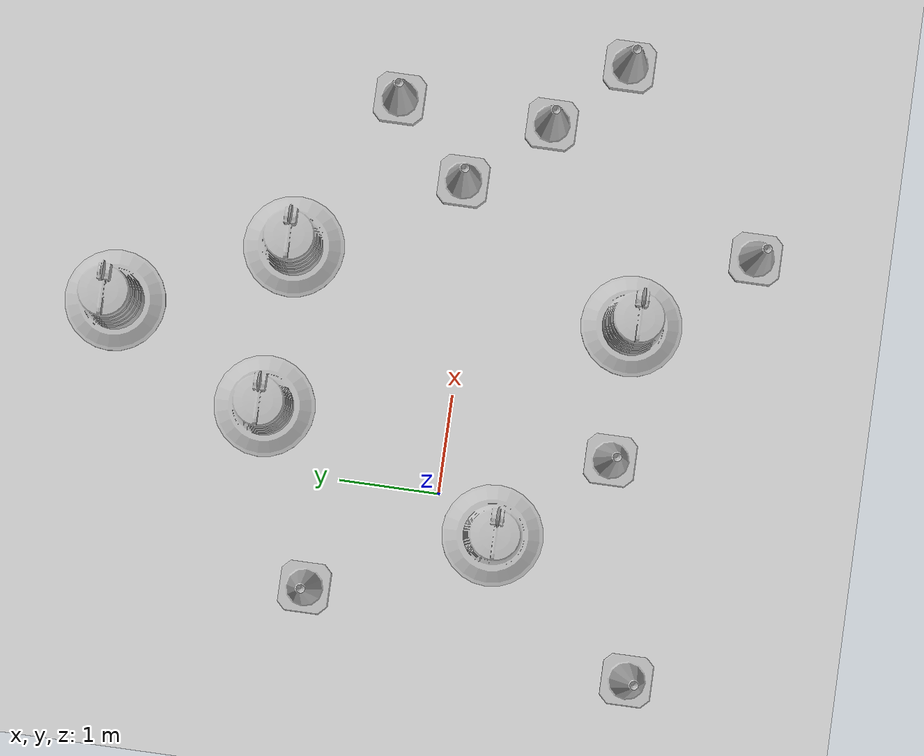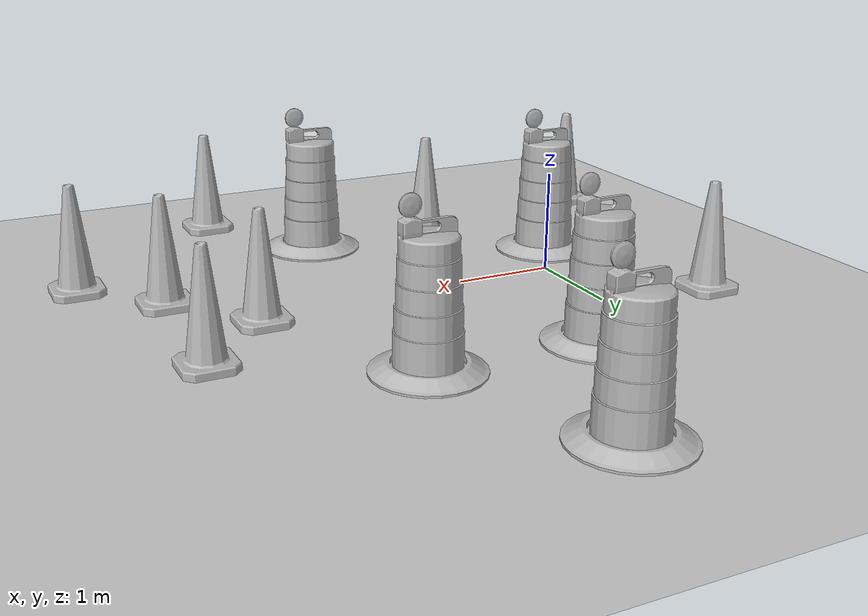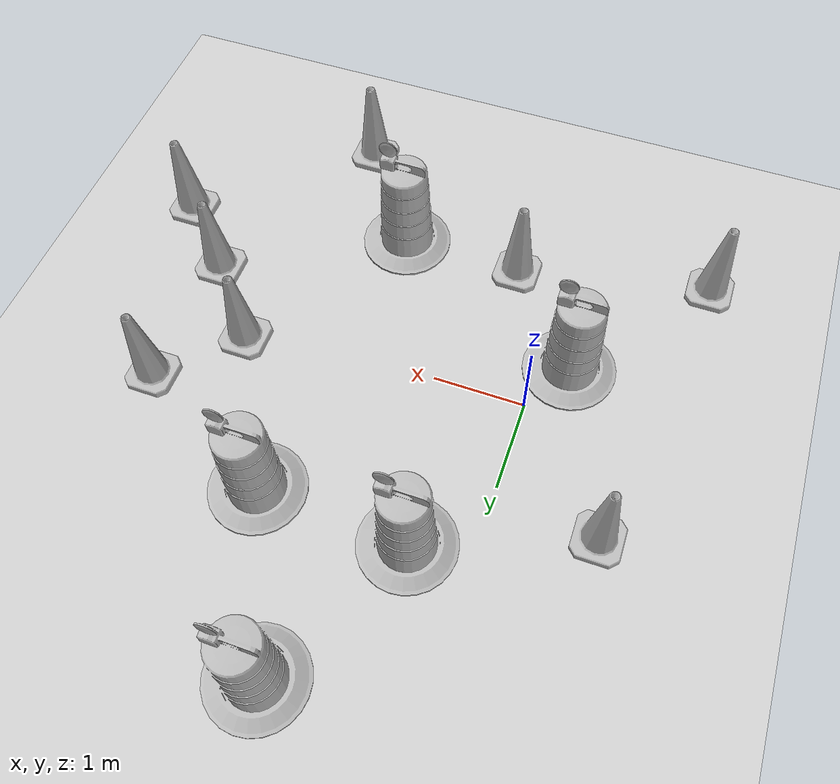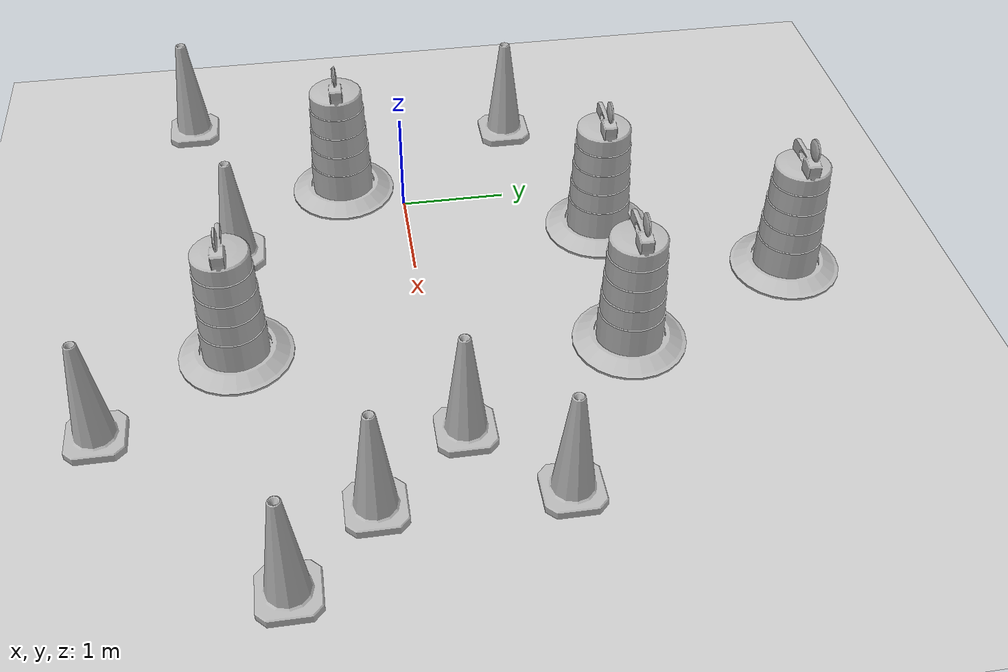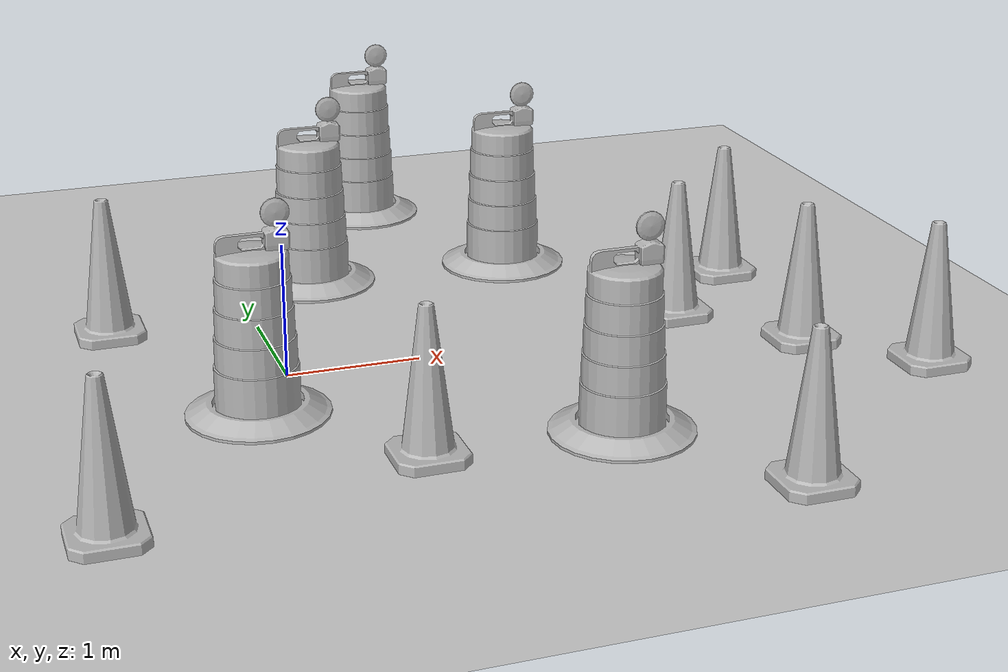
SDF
<sdf version="1.7">
 <world name="default">
  <light name="sun" type="directional">
   <pose>0 0 10 0 -0 0</pose>
   <diffuse>0.8 0.8 0.8 1</diffuse>
   <specular>0.2 0.2 0.2 1</specular>
   <attenuation>
    <range>1000</range>
    <constant>0.9</constant>
    <linear>0.01</linear>
    <quadratic>0.001</quadratic>
   </attenuation>
   <direction>-0.5 0.1 -0.9</direction>
   <spot><inner_angle>0</inner_angle><outer_angle>0</outer_angle><falloff>0</falloff></spot>
  </light>
  <model name="ground_plane">
   <static>1</static>
   <link name="link">
    <collision name="collision">
     <geometry><plane><normal>0 0 1</normal><size>100 100</size></plane></geometry>
     <surface>
      <contact><collide_bitmask>65535</collide_bitmask></contact>
      <friction><ode><mu>100</mu><mu2>50</mu2></ode></friction>
     </surface>
    </collision>
    <visual name="visual">
     <cast_shadows>0</cast_shadows>
     <geometry><plane><normal>0 0 1</normal><size>100 100</size></plane></geometry>
     <material>
      <script><uri>file://media/materials/scripts/gazebo.material</uri><name>Gazebo/Grey</name></script>
     </material>
    </visual>
   </link>
  </model>
  <gravity>0 0 -9.8</gravity>
  <magnetic_field>6e-06 2.3e-05 -4.2e-05</magnetic_field>
  <atmosphere type="adiabatic"/>
  <physics type="ode">
   <max_step_size>0.001</max_step_size>
   <real_time_factor>1</real_time_factor>
   <real_time_update_rate>1000</real_time_update_rate>
  </physics>
  <scene><ambient>0.4 0.4 0.4 1</ambient><background>0.7 0.7 0.7 1</background><shadows>1</shadows></scene>
  <audio><device>default</device></audio>
  <spherical_coordinates>
   <surface_model>EARTH_WGS84</surface_model>
   <latitude_deg>0</latitude_deg>
   <longitude_deg>0</longitude_deg>
   <elevation>0</elevation>
   <heading_deg>0</heading_deg>
  </spherical_coordinates>
  <model name="Construction Cone">
   <link name="link">
    <collision name="collision">
     <geometry>
      <mesh><scale>10 10 10</scale><uri>model://construction_cone/meshes/construction_cone.dae</uri></mesh>
     </geometry>
    </collision>
    <visual name="visual">
     <geometry>
      <mesh><scale>10 10 10</scale><uri>model://construction_cone/meshes/construction_cone.dae</uri></mesh>
     </geometry>
    </visual>
    <inertial>
     <inertia><ixx>1</ixx><ixy>0</ixy><ixz>0</ixz><iyy>1</iyy><iyz>0</iyz><izz>1</izz></inertia>
     <mass>1</mass>
    </inertial>
   </link>
   <pose>0.57018 -1.65138 -0 0 -1e-06 0</pose>
  </model>
  <model name="Construction Barrel">
   <link name="link">
    <inertial>
     <pose>0 0 0.4 0 -0 0</pose>
     <mass>500</mass>
     <inertia><ixx>51.2096</ixx><iyy>51.2096</iyy><izz>25</izz><ixy>0</ixy><ixz>0</ixz><iyz>0</iyz></inertia>
    </inertial>
    <collision name="collision">
     <geometry><mesh><uri>model://construction_barrel/meshes/construction_barrel.dae</uri></mesh></geometry>
    </collision>
    <visual name="visual">
     <geometry><mesh><uri>model://construction_barrel/meshes/construction_barrel.dae</uri></mesh></geometry>
    </visual>
   </link>
   <pose>1.9316 -1.68131 -0 0 -0 -4e-06</pose>
  </model>
  <model name="Construction Barrel_clone">
   <link name="link">
    <inertial>
     <pose>0 0 0.4 0 -0 0</pose>
     <mass>500</mass>
     <inertia><ixx>51.2096</ixx><iyy>51.2096</iyy><izz>25</izz><ixy>0</ixy><ixz>0</ixz><iyz>0</iyz></inertia>
    </inertial>
    <collision name="collision">
     <geometry><mesh><uri>model://construction_barrel/meshes/construction_barrel.dae</uri></mesh></geometry>
    </collision>
    <visual name="visual">
     <geometry><mesh><uri>model://construction_barrel/meshes/construction_barrel.dae</uri></mesh></geometry>
    </visual>
   </link>
   <pose>-0.333428 -0.584473 -0 0 -0 -4e-06</pose>
  </model>
  <model name="Construction Barrel_clone_0">
   <link name="link">
    <inertial>
     <pose>0 0 0.4 0 -0 0</pose>
     <mass>500</mass>
     <inertia><ixx>51.2096</ixx><iyy>51.2096</iyy><izz>25</izz><ixy>0</ixy><ixz>0</ixz><iyz>0</iyz></inertia>
    </inertial>
    <collision name="collision">
     <geometry><mesh><uri>model://construction_barrel/meshes/construction_barrel.dae</uri></mesh></geometry>
    </collision>
    <visual name="visual">
     <geometry><mesh><uri>model://construction_barrel/meshes/construction_barrel.dae</uri></mesh></geometry>
    </visual>
   </link>
   <pose>0.638387 1.85101 -0 0 -0 -4e-06</pose>
  </model>
  <model name="Construction Barrel_clone_1">
   <link name="link">
    <inertial>
     <pose>0 0 0.4 0 -0 0</pose>
     <mass>500</mass>
     <inertia><ixx>51.2096</ixx><iyy>51.2096</iyy><izz>25</izz><ixy>0</ixy><ixz>0</ixz><iyz>0</iyz></inertia>
    </inertial>
    <collision name="collision">
     <geometry><mesh><uri>model://construction_barrel/meshes/construction_barrel.dae</uri></mesh></geometry>
    </collision>
    <visual name="visual">
     <geometry><mesh><uri>model://construction_barrel/meshes/construction_barrel.dae</uri></mesh></geometry>
    </visual>
   </link>
   <pose>2.26398 1.78069 -0 0 -0 -4e-06</pose>
  </model>
  <model name="Construction Barrel_clone_2">
   <link name="link">
    <inertial>
     <pose>0 0 0.4 0 -0 0</pose>
     <mass>500</mass>
     <inertia><ixx>51.2096</ixx><iyy>51.2096</iyy><izz>25</izz><ixy>0</ixy><ixz>0</ixz><iyz>0</iyz></inertia>
    </inertial>
    <collision name="collision">
     <geometry><mesh><uri>model://construction_barrel/meshes/construction_barrel.dae</uri></mesh></geometry>
    </collision>
    <visual name="visual">
     <geometry><mesh><uri>model://construction_barrel/meshes/construction_barrel.dae</uri></mesh></geometry>
    </visual>
   </link>
   <pose>1.48529 3.48156 -0 0 -0 -4e-06</pose>
  </model>
  <model name="Construction Cone_clone">
   <link name="link">
    <collision name="collision">
     <geometry>
      <mesh><scale>10 10 10</scale><uri>model://construction_cone/meshes/construction_cone.dae</uri></mesh>
     </geometry>
    </collision>
    <visual name="visual">
     <geometry>
      <mesh><scale>10 10 10</scale><uri>model://construction_cone/meshes/construction_cone.dae</uri></mesh>
     </geometry>
    </visual>
    <inertial>
     <inertia><ixx>1</ixx><ixy>0</ixy><ixz>0</ixz><iyy>1</iyy><iyz>0</iyz><izz>1</izz></inertia>
     <mass>1</mass>
    </inertial>
   </link>
   <pose>3.1478 0.18478 -0 0 -1e-06 0</pose>
  </model>
  <model name="Construction Cone_clone_0">
   <link name="link">
    <collision name="collision">
     <geometry>
      <mesh><scale>10 10 10</scale><uri>model://construction_cone/meshes/construction_cone.dae</uri></mesh>
     </geometry>
    </collision>
    <visual name="visual">
     <geometry>
      <mesh><scale>10 10 10</scale><uri>model://construction_cone/meshes/construction_cone.dae</uri></mesh>
     </geometry>
    </visual>
    <inertial>
     <inertia><ixx>1</ixx><ixy>0</ixy><ixz>0</ixz><iyy>1</iyy><iyz>0</iyz><izz>1</izz></inertia>
     <mass>1</mass>
    </inertial>
   </link>
   <pose>-1.10032 1.20057 -0 0 -1e-06 0</pose>
  </model>
  <model name="Construction Cone_clone_1">
   <link name="link">
    <collision name="collision">
     <geometry>
      <mesh><scale>10 10 10</scale><uri>model://construction_cone/meshes/construction_cone.dae</uri></mesh>
     </geometry>
    </collision>
    <visual name="visual">
     <geometry>
      <mesh><scale>10 10 10</scale><uri>model://construction_cone/meshes/construction_cone.dae</uri></mesh>
     </geometry>
    </visual>
    <inertial>
     <inertia><ixx>1</ixx><ixy>0</ixy><ixz>0</ixz><iyy>1</iyy><iyz>0</iyz><izz>1</izz></inertia>
     <mass>1</mass>
    </inertial>
   </link>
   <pose>3.88803 0.931161 -0 0 -1e-06 0</pose>
  </model>
  <model name="Construction Cone_clone_2">
   <link name="link">
    <collision name="collision">
     <geometry>
      <mesh><scale>10 10 10</scale><uri>model://construction_cone/meshes/construction_cone.dae</uri></mesh>
     </geometry>
    </collision>
    <visual name="visual">
     <geometry>
      <mesh><scale>10 10 10</scale><uri>model://construction_cone/meshes/construction_cone.dae</uri></mesh>
     </geometry>
    </visual>
    <inertial>
     <inertia><ixx>1</ixx><ixy>0</ixy><ixz>0</ixz><iyy>1</iyy><iyz>0</iyz><izz>1</izz></inertia>
     <mass>1</mass>
    </inertial>
   </link>
   <pose>4.52749 -1.31694 -0 0 -1e-06 0</pose>
  </model>
  <model name="Construction Cone_clone_3">
   <link name="link">
    <collision name="collision">
     <geometry>
      <mesh><scale>10 10 10</scale><uri>model://construction_cone/meshes/construction_cone.dae</uri></mesh>
     </geometry>
    </collision>
    <visual name="visual">
     <geometry>
      <mesh><scale>10 10 10</scale><uri>model://construction_cone/meshes/construction_cone.dae</uri></mesh>
     </geometry>
    </visual>
    <inertial>
     <inertia><ixx>1</ixx><ixy>0</ixy><ixz>0</ixz><iyy>1</iyy><iyz>0</iyz><izz>1</izz></inertia>
     <mass>1</mass>
    </inertial>
   </link>
   <pose>3.83655 -0.617523 -0 0 -1e-06 0</pose>
  </model>
  <model name="Construction Cone_clone_4">
   <link name="link">
    <collision name="collision">
     <geometry>
      <mesh><scale>10 10 10</scale><uri>model://construction_cone/meshes/construction_cone.dae</uri></mesh>
     </geometry>
    </collision>
    <visual name="visual">
     <geometry>
      <mesh><scale>10 10 10</scale><uri>model://construction_cone/meshes/construction_cone.dae</uri></mesh>
     </geometry>
    </visual>
    <inertial>
     <inertia><ixx>1</ixx><ixy>0</ixy><ixz>0</ixz><iyy>1</iyy><iyz>0</iyz><izz>1</izz></inertia>
     <mass>1</mass>
    </inertial>
   </link>
   <pose>-1.58053 -2.10113 -0 0 -1e-06 0</pose>
  </model>
  <model name="Construction Cone_clone_5">
   <link name="link">
    <collision name="collision">
     <geometry>
      <mesh><scale>10 10 10</scale><uri>model://construction_cone/meshes/construction_cone.dae</uri></mesh>
     </geometry>
    </collision>
    <visual name="visual">
     <geometry>
      <mesh><scale>10 10 10</scale><uri>model://construction_cone/meshes/construction_cone.dae</uri></mesh>
     </geometry>
    </visual>
    <inertial>
     <inertia><ixx>1</ixx><ixy>0</ixy><ixz>0</ixz><iyy>1</iyy><iyz>0</iyz><izz>1</izz></inertia>
     <mass>1</mass>
    </inertial>
   </link>
   <pose>2.77015 -2.82653 -0 0 -1e-06 0</pose>
  </model>
 </world>
</sdf>
